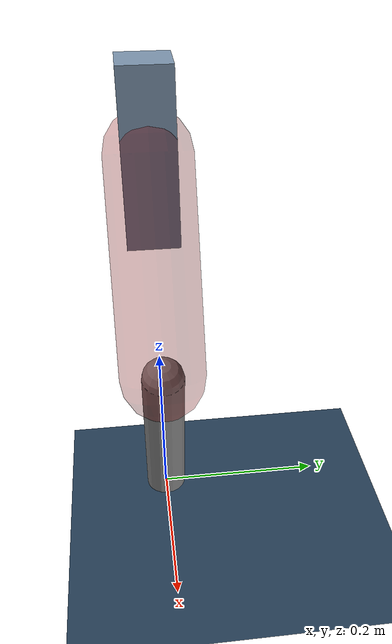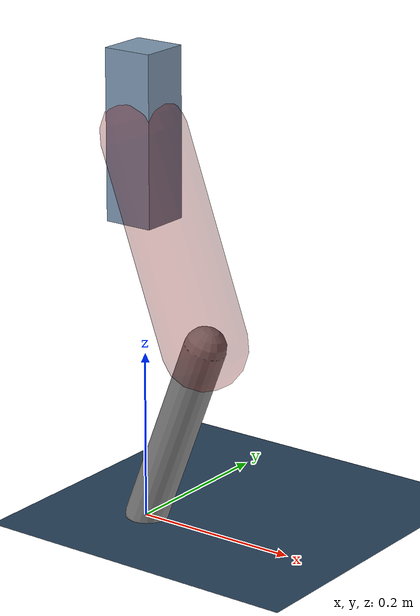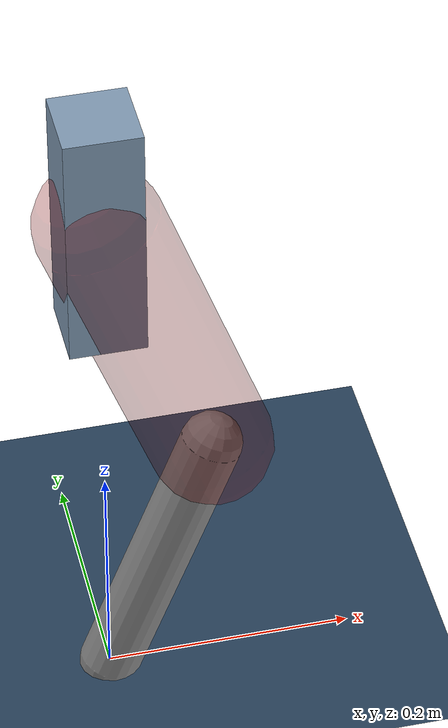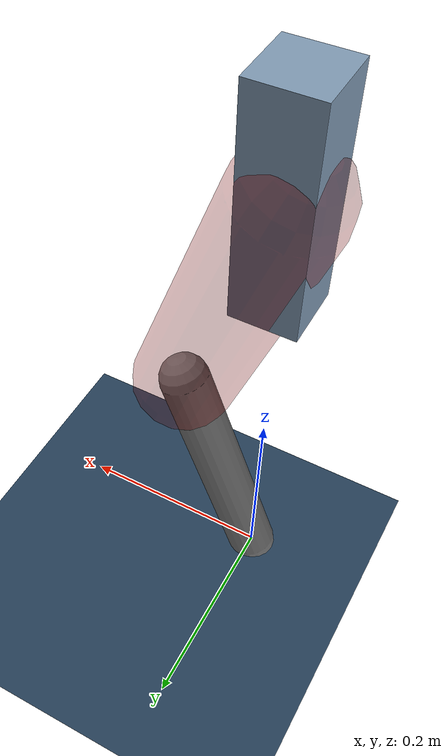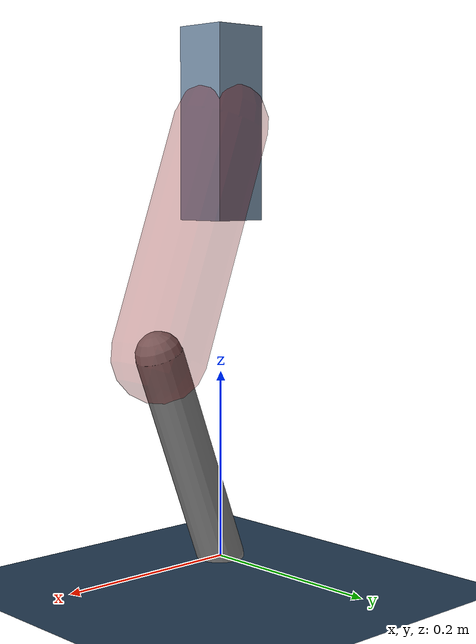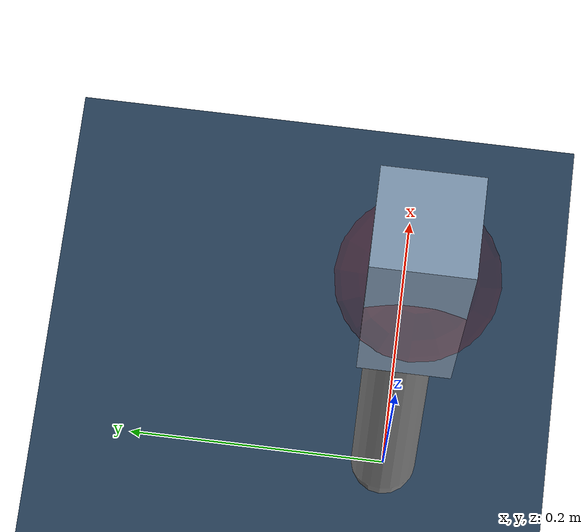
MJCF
<mujoco model="Hopper2D">
	<compiler inertiafromgeom="true" angle="radian" />
	<option timestep="0.001" integrator="implicit" cone="elliptic" solver="Newton" tolerance="1e-10" />

	<default>
		<geom contype="1" conaffinity="1" condim="3" friction="2 0.005 0.0001" solref="0.005 1" />
		<joint limited="true" damping="0.1" />
	</default>

	<asset>
		<texture name="skybox" type="skybox" builtin="gradient" rgb1=".4 .6 .8" rgb2="0 0 0" width="800" height="800" />
		<texture name="grid" type="2d" builtin="checker" rgb1=".1 .2 .3" rgb2=".2 .3 .4" width="300" height="300" mark="edge" markrgb=".2 .3 .4" />
		<material name="ground" texture="grid" texrepeat="1 1" texuniform="true" reflectance="0.1" />
		<material name="leg" rgba="0.5 0.6 0.7 1" />
	</asset>

	<worldbody>

		<geom name="floor" type="plane" size="5 5 0.25" material="ground" />

		<light directional="false" diffuse="0.8 0.8 0.8" specular="0.3 0.3 0.3" pos="0 0 2" dir="0 0 -1" />
		<light mode="targetbodycom" target="base" directional="false" diffuse="0.8 0.8 0.8" specular="0.3 0.3 0.3" pos="0 0 2" dir="0 0 -1" />

		<camera name="fixed" pos="0 -2 1" xyaxes="1 0 0 0 0 1" />
		<camera name="tracking" mode="trackcom" pos="0 -3 1" />

		<body name="root" pos="0 0 0.4609543438511232">
			<joint name="slide_x" type="slide" axis="1 0 0" range="-100 100" />
			<joint name="slide_z" type="slide" axis="0 0 1" range="0 10" />

			<body name="base" pos="0 0 0">
				<geom name="torso" type="box" size="0.03 0.03 0.1" mass="2.4539999999999997" material="leg" />

				<body name="link1" pos="0 0 0" euler="0 1.2225297986359946 0">
					<joint type="hinge" axis="0 -1 0" pos="0 0 0" name="hinge1" limited="true" range="-3.14 3.14" stiffness="0" damping="0.1" />
					<geom name="thigh" type="capsule" fromto="0 0 0 0.25087848903210846 0 0" size="0.05" rgba="0.5 0 0 0.3" mass="0.858684071483482" />

					<body name="link2" pos="0.25087848903210846 0 0" euler="0 0.7116654337573011 0">
						<joint type="hinge" axis="0 -1 0" pos="0 0 0" name="hinge2" limited="true" range="-3.14 3.14" stiffness="0" damping="0.1" />
						<geom name="shank" type="capsule" fromto="0 0 0 0.24086722548554332 0 0" size="0.025" mass="0.43499378038843467" />

					</body>
				</body>
			</body>
		</body>
	</worldbody>

	<actuator>
		<motor name="torque1" joint="hinge1" ctrlrange="-82.8993362994646 82.8993362994646" ctrllimited="true" gear="1" />
		<motor name="torque2" joint="hinge2" ctrlrange="-23.590341982094046 23.590341982094046" ctrllimited="true" gear="1" />
	</actuator>
</mujoco>
